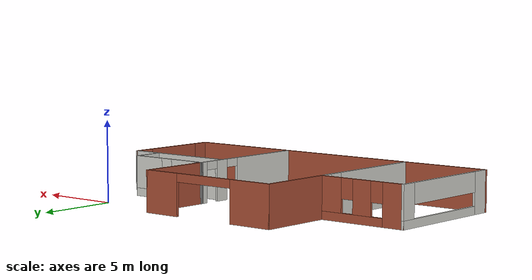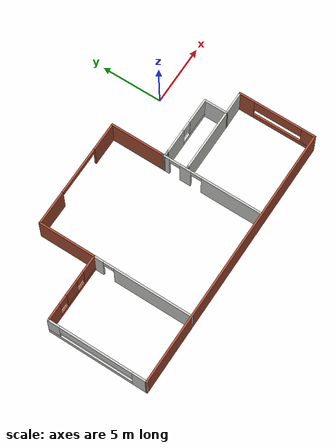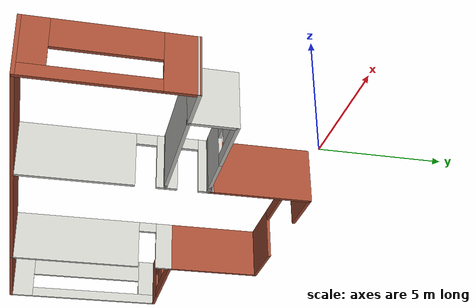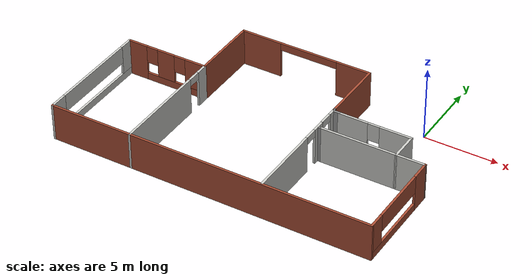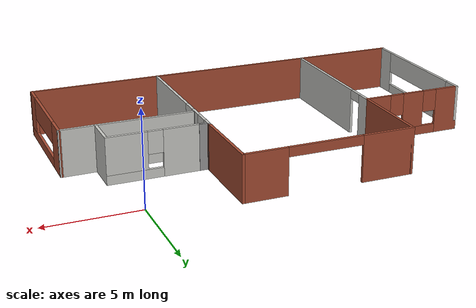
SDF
<?xml version='1.0'?>
<sdf version='1.6'>
  <model name='Building'>
    <pose frame=''>-8.2346 -5.24 0 0 -0 0</pose>
    <link name='Wall_11'>
      <pose frame=''>6.62948 1.82989 0 0 -0 0</pose>
      <visual name='Wall_11_Visual_0'>
        <pose frame=''>-1.4822 0 1.25 0 -0 0</pose>
        <geometry>
          <box>
            <size>2.0356 0.15 2.5</size>
          </box>
        </geometry>
        <material>
          <script>
            <uri>file://media/materials/scripts/gazebo.material</uri>
            <name>Gazebo/CeilingTiled</name>
          </script>
          <ambient>0.435294 0.796078 0.67451 1</ambient>
        </material>
        <meta>
          <layer>0</layer>
        </meta>
      </visual>
      <collision name='Wall_11_Collision_0'>
        <geometry>
          <box>
            <size>2.0356 0.15 2.5</size>
          </box>
        </geometry>
        <pose frame=''>-1.4822 0 1.25 0 -0 0</pose>
      </collision>
      <visual name='Wall_11_Visual_1'>
        <pose frame=''>1.0178 0 0.25 0 -0 0</pose>
        <geometry>
          <box>
            <size>2.9644 0.15 0.5</size>
          </box>
        </geometry>
        <material>
          <script>
            <uri>file://media/materials/scripts/gazebo.material</uri>
            <name>Gazebo/CeilingTiled</name>
          </script>
          <ambient>0.435294 0.796078 0.67451 1</ambient>
        </material>
        <meta>
          <layer>0</layer>
        </meta>
      </visual>
      <collision name='Wall_11_Collision_1'>
        <geometry>
          <box>
            <size>2.9644 0.15 0.5</size>
          </box>
        </geometry>
        <pose frame=''>1.0178 0 0.25 0 -0 0</pose>
      </collision>
      <visual name='Wall_11_Visual_2'>
        <pose frame=''>1.4178 0 1.5 0 -0 0</pose>
        <geometry>
          <box>
            <size>2.1644 0.15 2</size>
          </box>
        </geometry>
        <material>
          <script>
            <uri>file://media/materials/scripts/gazebo.material</uri>
            <name>Gazebo/CeilingTiled</name>
          </script>
          <ambient>0.435294 0.796078 0.67451 1</ambient>
        </material>
        <meta>
          <layer>0</layer>
        </meta>
      </visual>
      <collision name='Wall_11_Collision_2'>
        <geometry>
          <box>
            <size>2.1644 0.15 2</size>
          </box>
        </geometry>
        <pose frame=''>1.4178 0 1.5 0 -0 0</pose>
      </collision>
      <visual name='Wall_11_Visual_3'>
        <pose frame=''>-0.064396 0 1.9 0 -0 0</pose>
        <geometry>
          <box>
            <size>0.8 0.15 1.2</size>
          </box>
        </geometry>
        <material>
          <script>
            <uri>file://media/materials/scripts/gazebo.material</uri>
            <name>Gazebo/CeilingTiled</name>
          </script>
          <ambient>0.435294 0.796078 0.67451 1</ambient>
        </material>
        <meta>
          <layer>0</layer>
        </meta>
      </visual>
      <collision name='Wall_11_Collision_3'>
        <geometry>
          <box>
            <size>0.8 0.15 1.2</size>
          </box>
        </geometry>
        <pose frame=''>-0.064396 0 1.9 0 -0 0</pose>
      </collision>
    </link>
    <link name='Wall_12'>
      <collision name='Wall_12_Collision'>
        <geometry>
          <box>
            <size>2 0.15 2.5</size>
          </box>
        </geometry>
        <pose frame=''>0 0 1.25 0 -0 0</pose>
      </collision>
      <visual name='Wall_12_Visual'>
        <pose frame=''>0 0 1.25 0 -0 0</pose>
        <geometry>
          <box>
            <size>2 0.15 2.5</size>
          </box>
        </geometry>
        <material>
          <script>
            <uri>file://media/materials/scripts/gazebo.material</uri>
            <name>Gazebo/CeilingTiled</name>
          </script>
          <ambient>0.435294 0.796078 0.67451 1</ambient>
        </material>
        <meta>
          <layer>0</layer>
        </meta>
      </visual>
      <pose frame=''>9.05449 0.904887 0 0 0 -1.5708</pose>
    </link>
    <link name='Wall_13'>
      <collision name='Wall_13_Collision'>
        <geometry>
          <box>
            <size>2.02022 0.15 2.5</size>
          </box>
        </geometry>
        <pose frame=''>0 0 1.25 0 -0 0</pose>
      </collision>
      <visual name='Wall_13_Visual'>
        <pose frame=''>0 0 1.25 0 -0 0</pose>
        <geometry>
          <box>
            <size>2.02022 0.15 2.5</size>
          </box>
        </geometry>
        <material>
          <script>
            <uri>file://media/materials/scripts/gazebo.material</uri>
            <name>Gazebo/CeilingTiled</name>
          </script>
          <ambient>1 1 1 1</ambient>
        </material>
        <meta>
          <layer>0</layer>
        </meta>
      </visual>
      <pose frame=''>9.98954 -0.010056 0 0 -0 0.010755</pose>
    </link>
    <link name='Wall_14'>
      <pose frame=''>10.9246 -3.175 0 0 0 -1.5708</pose>
      <visual name='Wall_14_Visual_0'>
        <pose frame=''>-2.57463 0 1.25 0 -0 0</pose>
        <geometry>
          <box>
            <size>1.35073 0.15 2.5</size>
          </box>
        </geometry>
        <material>
          <script>
            <uri>file://media/materials/scripts/gazebo.material</uri>
            <name>Gazebo/Bricks</name>
          </script>
          <ambient>1 1 1 1</ambient>
        </material>
        <meta>
          <layer>0</layer>
        </meta>
      </visual>
      <collision name='Wall_14_Collision_0'>
        <geometry>
          <box>
            <size>1.35073 0.15 2.5</size>
          </box>
        </geometry>
        <pose frame=''>-2.57463 0 1.25 0 -0 0</pose>
      </collision>
      <visual name='Wall_14_Visual_1'>
        <pose frame=''>0.675366 0 0.25 0 -0 0</pose>
        <geometry>
          <box>
            <size>5.14927 0.15 0.5</size>
          </box>
        </geometry>
        <material>
          <script>
            <uri>file://media/materials/scripts/gazebo.material</uri>
            <name>Gazebo/Bricks</name>
          </script>
          <ambient>1 1 1 1</ambient>
        </material>
        <meta>
          <layer>0</layer>
        </meta>
      </visual>
      <collision name='Wall_14_Collision_1'>
        <geometry>
          <box>
            <size>5.14927 0.15 0.5</size>
          </box>
        </geometry>
        <pose frame=''>0.675366 0 0.25 0 -0 0</pose>
      </collision>
      <visual name='Wall_14_Visual_2'>
        <pose frame=''>2.67537 0 1.5 0 -0 0</pose>
        <geometry>
          <box>
            <size>1.14927 0.15 2</size>
          </box>
        </geometry>
        <material>
          <script>
            <uri>file://media/materials/scripts/gazebo.material</uri>
            <name>Gazebo/Bricks</name>
          </script>
          <ambient>1 1 1 1</ambient>
        </material>
        <meta>
          <layer>0</layer>
        </meta>
      </visual>
      <collision name='Wall_14_Collision_2'>
        <geometry>
          <box>
            <size>1.14927 0.15 2</size>
          </box>
        </geometry>
        <pose frame=''>2.67537 0 1.5 0 -0 0</pose>
      </collision>
      <visual name='Wall_14_Visual_3'>
        <pose frame=''>0.100732 0 1.9 0 -0 0</pose>
        <geometry>
          <box>
            <size>4 0.15 1.2</size>
          </box>
        </geometry>
        <material>
          <script>
            <uri>file://media/materials/scripts/gazebo.material</uri>
            <name>Gazebo/Bricks</name>
          </script>
          <ambient>1 1 1 1</ambient>
        </material>
        <meta>
          <layer>0</layer>
        </meta>
      </visual>
      <collision name='Wall_14_Collision_3'>
        <geometry>
          <box>
            <size>4 0.15 1.2</size>
          </box>
        </geometry>
        <pose frame=''>0.100732 0 1.9 0 -0 0</pose>
      </collision>
    </link>
    <link name='Wall_15'>
      <collision name='Wall_15_Collision'>
        <geometry>
          <box>
            <size>22 0.15 2.5</size>
          </box>
        </geometry>
        <pose frame=''>0 0 1.25 0 -0 0</pose>
      </collision>
      <visual name='Wall_15_Visual'>
        <pose frame=''>0 0 1.25 0 -0 0</pose>
        <geometry>
          <box>
            <size>22 0.15 2.5</size>
          </box>
        </geometry>
        <material>
          <script>
            <uri>file://media/materials/scripts/gazebo.material</uri>
            <name>Gazebo/Bricks</name>
          </script>
          <ambient>1 1 1 1</ambient>
        </material>
        <meta>
          <layer>0</layer>
        </meta>
      </visual>
      <pose frame=''>-0.000401 -6.35 0 0 -0 3.14159</pose>
    </link>
    <link name='Wall_16'>
      <pose frame=''>-10.9254 -2.3 0 0 -0 1.5708</pose>
      <visual name='Wall_16_Visual_0'>
        <pose frame=''>-3.50481 0 1.25 0 -0 0</pose>
        <geometry>
          <box>
            <size>1.24037 0.15 2.5</size>
          </box>
        </geometry>
        <material>
          <script>
            <uri>file://media/materials/scripts/gazebo.material</uri>
            <name>Gazebo/CeilingTiled</name>
          </script>
          <ambient>0.435294 0.796078 0.67451 1</ambient>
        </material>
        <meta>
          <layer>0</layer>
        </meta>
      </visual>
      <collision name='Wall_16_Collision_0'>
        <geometry>
          <box>
            <size>1.24037 0.15 2.5</size>
          </box>
        </geometry>
        <pose frame=''>-3.50481 0 1.25 0 -0 0</pose>
      </collision>
      <visual name='Wall_16_Visual_1'>
        <pose frame=''>0.620185 0 0.25 0 -0 0</pose>
        <geometry>
          <box>
            <size>7.00963 0.15 0.5</size>
          </box>
        </geometry>
        <material>
          <script>
            <uri>file://media/materials/scripts/gazebo.material</uri>
            <name>Gazebo/CeilingTiled</name>
          </script>
          <ambient>0.435294 0.796078 0.67451 1</ambient>
        </material>
        <meta>
          <layer>0</layer>
        </meta>
      </visual>
      <collision name='Wall_16_Collision_1'>
        <geometry>
          <box>
            <size>7.00963 0.15 0.5</size>
          </box>
        </geometry>
        <pose frame=''>0.620185 0 0.25 0 -0 0</pose>
      </collision>
      <visual name='Wall_16_Visual_2'>
        <pose frame=''>3.62019 0 1.5 0 -0 0</pose>
        <geometry>
          <box>
            <size>1.00963 0.15 2</size>
          </box>
        </geometry>
        <material>
          <script>
            <uri>file://media/materials/scripts/gazebo.material</uri>
            <name>Gazebo/CeilingTiled</name>
          </script>
          <ambient>0.435294 0.796078 0.67451 1</ambient>
        </material>
        <meta>
          <layer>0</layer>
        </meta>
      </visual>
      <collision name='Wall_16_Collision_2'>
        <geometry>
          <box>
            <size>1.00963 0.15 2</size>
          </box>
        </geometry>
        <pose frame=''>3.62019 0 1.5 0 -0 0</pose>
      </collision>
      <visual name='Wall_16_Visual_3'>
        <pose frame=''>0.11537 0 1.9 0 -0 0</pose>
        <geometry>
          <box>
            <size>6 0.15 1.2</size>
          </box>
        </geometry>
        <material>
          <script>
            <uri>file://media/materials/scripts/gazebo.material</uri>
            <name>Gazebo/CeilingTiled</name>
          </script>
          <ambient>0.435294 0.796078 0.67451 1</ambient>
        </material>
        <meta>
          <layer>0</layer>
        </meta>
      </visual>
      <collision name='Wall_16_Collision_3'>
        <geometry>
          <box>
            <size>6 0.15 1.2</size>
          </box>
        </geometry>
        <pose frame=''>0.11537 0 1.9 0 -0 0</pose>
      </collision>
    </link>
    <link name='Wall_17'>
      <pose frame=''>-8.1254 1.75 0 0 -0 0</pose>
      <visual name='Wall_17_Visual_0'>
        <pose frame=''>-2.16717 0 1.25 0 -0 0</pose>
        <geometry>
          <box>
            <size>1.41566 0.15 2.5</size>
          </box>
        </geometry>
        <material>
          <script>
            <uri>file://media/materials/scripts/gazebo.material</uri>
            <name>Gazebo/Bricks</name>
          </script>
          <ambient>1 1 1 1</ambient>
        </material>
        <meta>
          <layer>0</layer>
        </meta>
      </visual>
      <collision name='Wall_17_Collision_0'>
        <geometry>
          <box>
            <size>1.41566 0.15 2.5</size>
          </box>
        </geometry>
        <pose frame=''>-2.16717 0 1.25 0 -0 0</pose>
      </collision>
      <visual name='Wall_17_Visual_1'>
        <pose frame=''>0.707832 0 0.25 0 -0 0</pose>
        <geometry>
          <box>
            <size>4.33434 0.15 0.5</size>
          </box>
        </geometry>
        <material>
          <script>
            <uri>file://media/materials/scripts/gazebo.material</uri>
            <name>Gazebo/Bricks</name>
          </script>
          <ambient>1 1 1 1</ambient>
        </material>
        <meta>
          <layer>0</layer>
        </meta>
      </visual>
      <collision name='Wall_17_Collision_1'>
        <geometry>
          <box>
            <size>4.33434 0.15 0.5</size>
          </box>
        </geometry>
        <pose frame=''>0.707832 0 0.25 0 -0 0</pose>
      </collision>
      <visual name='Wall_17_Visual_2'>
        <pose frame=''>-0.039392 0 1.5 0 -0 0</pose>
        <geometry>
          <box>
            <size>1.23989 0.15 2</size>
          </box>
        </geometry>
        <material>
          <script>
            <uri>file://media/materials/scripts/gazebo.material</uri>
            <name>Gazebo/Bricks</name>
          </script>
          <ambient>1 1 1 1</ambient>
        </material>
        <meta>
          <layer>0</layer>
        </meta>
      </visual>
      <collision name='Wall_17_Collision_2'>
        <geometry>
          <box>
            <size>1.23989 0.15 2</size>
          </box>
        </geometry>
        <pose frame=''>-0.039392 0 1.5 0 -0 0</pose>
      </collision>
      <visual name='Wall_17_Visual_3'>
        <pose frame=''>2.12778 0 1.5 0 -0 0</pose>
        <geometry>
          <box>
            <size>1.49445 0.15 2</size>
          </box>
        </geometry>
        <material>
          <script>
            <uri>file://media/materials/scripts/gazebo.material</uri>
            <name>Gazebo/Bricks</name>
          </script>
          <ambient>1 1 1 1</ambient>
        </material>
        <meta>
          <layer>0</layer>
        </meta>
      </visual>
      <collision name='Wall_17_Collision_3'>
        <geometry>
          <box>
            <size>1.49445 0.15 2</size>
          </box>
        </geometry>
        <pose frame=''>2.12778 0 1.5 0 -0 0</pose>
      </collision>
      <visual name='Wall_17_Visual_4'>
        <pose frame=''>-1.05934 0 1.9 0 -0 0</pose>
        <geometry>
          <box>
            <size>0.8 0.15 1.2</size>
          </box>
        </geometry>
        <material>
          <script>
            <uri>file://media/materials/scripts/gazebo.material</uri>
            <name>Gazebo/Bricks</name>
          </script>
          <ambient>1 1 1 1</ambient>
        </material>
        <meta>
          <layer>0</layer>
        </meta>
      </visual>
      <collision name='Wall_17_Collision_4'>
        <geometry>
          <box>
            <size>0.8 0.15 1.2</size>
          </box>
        </geometry>
        <pose frame=''>-1.05934 0 1.9 0 -0 0</pose>
      </collision>
      <visual name='Wall_17_Visual_5'>
        <pose frame=''>0.980551 0 1.9 0 -0 0</pose>
        <geometry>
          <box>
            <size>0.8 0.15 1.2</size>
          </box>
        </geometry>
        <material>
          <script>
            <uri>file://media/materials/scripts/gazebo.material</uri>
            <name>Gazebo/Bricks</name>
          </script>
          <ambient>1 1 1 1</ambient>
        </material>
        <meta>
          <layer>0</layer>
        </meta>
      </visual>
      <collision name='Wall_17_Collision_5'>
        <geometry>
          <box>
            <size>0.8 0.15 1.2</size>
          </box>
        </geometry>
        <pose frame=''>0.980551 0 1.9 0 -0 0</pose>
      </collision>
    </link>
    <link name='Wall_18'>
      <collision name='Wall_18_Collision'>
        <geometry>
          <box>
            <size>4.75 0.15 2.5</size>
          </box>
        </geometry>
        <pose frame=''>0 0 1.25 0 -0 0</pose>
      </collision>
      <visual name='Wall_18_Visual'>
        <pose frame=''>0 0 1.25 0 -0 0</pose>
        <geometry>
          <box>
            <size>4.75 0.15 2.5</size>
          </box>
        </geometry>
        <material>
          <script>
            <uri>file://media/materials/scripts/gazebo.material</uri>
            <name>Gazebo/Bricks</name>
          </script>
          <ambient>1 1 1 1</ambient>
        </material>
        <meta>
          <layer>0</layer>
        </meta>
      </visual>
      <pose frame=''>-5.3254 4.05 0 0 -0 1.5708</pose>
    </link>
    <link name='Wall_19'>
      <pose frame=''>-0.775401 6.35 0 0 -0 0</pose>
      <visual name='Wall_19_Visual_0'>
        <pose frame=''>-3.2002 0 1.25 0 -0 0</pose>
        <geometry>
          <box>
            <size>2.8496 0.15 2.5</size>
          </box>
        </geometry>
        <material>
          <script>
            <uri>file://media/materials/scripts/gazebo.material</uri>
            <name>Gazebo/Bricks</name>
          </script>
          <ambient>1 1 1 1</ambient>
        </material>
        <meta>
          <layer>0</layer>
        </meta>
      </visual>
      <collision name='Wall_19_Collision_0'>
        <geometry>
          <box>
            <size>2.8496 0.15 2.5</size>
          </box>
        </geometry>
        <pose frame=''>-3.2002 0 1.25 0 -0 0</pose>
      </collision>
      <visual name='Wall_19_Visual_1'>
        <pose frame=''>3.4248 0 1.25 0 -0 0</pose>
        <geometry>
          <box>
            <size>2.4004 0.15 2.5</size>
          </box>
        </geometry>
        <material>
          <script>
            <uri>file://media/materials/scripts/gazebo.material</uri>
            <name>Gazebo/Bricks</name>
          </script>
          <ambient>1 1 1 1</ambient>
        </material>
        <meta>
          <layer>0</layer>
        </meta>
      </visual>
      <collision name='Wall_19_Collision_1'>
        <geometry>
          <box>
            <size>2.4004 0.15 2.5</size>
          </box>
        </geometry>
        <pose frame=''>3.4248 0 1.25 0 -0 0</pose>
      </collision>
      <visual name='Wall_19_Visual_2'>
        <pose frame=''>0.224605 0 2.25 0 -0 0</pose>
        <geometry>
          <box>
            <size>4 0.15 0.5</size>
          </box>
        </geometry>
        <material>
          <script>
            <uri>file://media/materials/scripts/gazebo.material</uri>
            <name>Gazebo/Bricks</name>
          </script>
          <ambient>1 1 1 1</ambient>
        </material>
        <meta>
          <layer>0</layer>
        </meta>
      </visual>
      <collision name='Wall_19_Collision_2'>
        <geometry>
          <box>
            <size>4 0.15 0.5</size>
          </box>
        </geometry>
        <pose frame=''>0.224605 0 2.25 0 -0 0</pose>
      </collision>
    </link>
    <link name='Wall_20'>
      <collision name='Wall_20_Collision'>
        <geometry>
          <box>
            <size>4.5 0.15 2.5</size>
          </box>
        </geometry>
        <pose frame=''>0 0 1.25 0 -0 0</pose>
      </collision>
      <visual name='Wall_20_Visual'>
        <pose frame=''>0 0 1.25 0 -0 0</pose>
        <geometry>
          <box>
            <size>4.5 0.15 2.5</size>
          </box>
        </geometry>
        <material>
          <script>
            <uri>file://media/materials/scripts/gazebo.material</uri>
            <name>Gazebo/Bricks</name>
          </script>
          <ambient>1 1 1 1</ambient>
        </material>
        <meta>
          <layer>0</layer>
        </meta>
      </visual>
      <pose frame=''>3.7746 4.175 0 0 0 -1.5708</pose>
    </link>
    <link name='Wall_23'>
      <collision name='Wall_23_Collision'>
        <geometry>
          <box>
            <size>0.323879 0.15 2.5</size>
          </box>
        </geometry>
        <pose frame=''>0 0 1.25 0 -0 0</pose>
      </collision>
      <visual name='Wall_23_Visual'>
        <pose frame=''>0 0 1.25 0 -0 0</pose>
        <geometry>
          <box>
            <size>0.323879 0.15 2.5</size>
          </box>
        </geometry>
        <material>
          <script>
            <uri>file://media/materials/scripts/gazebo.material</uri>
            <name>Gazebo/Grey</name>
          </script>
          <ambient>1 1 1 1</ambient>
        </material>
        <meta>
          <layer>0</layer>
        </meta>
      </visual>
      <pose frame=''>3.77125 1.91312 0 0 0 -1.60936</pose>
    </link>
    <link name='Wall_26'>
      <collision name='Wall_26_Collision'>
        <geometry>
          <box>
            <size>0.587206 0.15 2.5</size>
          </box>
        </geometry>
        <pose frame=''>0 0 1.25 0 -0 0</pose>
      </collision>
      <visual name='Wall_26_Visual'>
        <pose frame=''>0 0 1.25 0 -0 0</pose>
        <geometry>
          <box>
            <size>0.587206 0.15 2.5</size>
          </box>
        </geometry>
        <material>
          <script>
            <uri>file://media/materials/scripts/gazebo.material</uri>
            <name>Gazebo/Grey</name>
          </script>
          <ambient>1 1 1 1</ambient>
        </material>
        <meta>
          <layer>0</layer>
        </meta>
      </visual>
      <pose frame=''>3.98619 1.83477 0 0 0 -3.13326</pose>
    </link>
    <link name='Wall_28'>
      <pose frame=''>-5.3254 -2.3 0 0 0 -1.5708</pose>
      <visual name='Wall_28_Visual_0'>
        <pose frame=''>-3.6972 0 1.25 0 -0 0</pose>
        <geometry>
          <box>
            <size>0.855593 0.15 2.5</size>
          </box>
        </geometry>
        <material>
          <script>
            <uri>file://media/materials/scripts/gazebo.material</uri>
            <name>Gazebo/CeilingTiled</name>
          </script>
          <ambient>0.996078 0.47451 0.0196078 1</ambient>
        </material>
        <meta>
          <layer>0</layer>
        </meta>
      </visual>
      <collision name='Wall_28_Collision_0'>
        <geometry>
          <box>
            <size>0.855593 0.15 2.5</size>
          </box>
        </geometry>
        <pose frame=''>-3.6972 0 1.25 0 -0 0</pose>
      </collision>
      <visual name='Wall_28_Visual_1'>
        <pose frame=''>0.877797 0 1.25 0 -0 0</pose>
        <geometry>
          <box>
            <size>6.49441 0.15 2.5</size>
          </box>
        </geometry>
        <material>
          <script>
            <uri>file://media/materials/scripts/gazebo.material</uri>
            <name>Gazebo/CeilingTiled</name>
          </script>
          <ambient>0.996078 0.47451 0.0196078 1</ambient>
        </material>
        <meta>
          <layer>0</layer>
        </meta>
      </visual>
      <collision name='Wall_28_Collision_1'>
        <geometry>
          <box>
            <size>6.49441 0.15 2.5</size>
          </box>
        </geometry>
        <pose frame=''>0.877797 0 1.25 0 -0 0</pose>
      </collision>
      <visual name='Wall_28_Visual_2'>
        <pose frame=''>-2.81941 0 2.25 0 -0 0</pose>
        <geometry>
          <box>
            <size>0.9 0.15 0.5</size>
          </box>
        </geometry>
        <material>
          <script>
            <uri>file://media/materials/scripts/gazebo.material</uri>
            <name>Gazebo/CeilingTiled</name>
          </script>
          <ambient>0.996078 0.47451 0.0196078 1</ambient>
        </material>
        <meta>
          <layer>0</layer>
        </meta>
      </visual>
      <collision name='Wall_28_Collision_2'>
        <geometry>
          <box>
            <size>0.9 0.15 0.5</size>
          </box>
        </geometry>
        <pose frame=''>-2.81941 0 2.25 0 -0 0</pose>
      </collision>
    </link>
    <link name='Wall_30'>
      <pose frame=''>3.7679 -2.21705 0 0 0 -1.5708</pose>
      <visual name='Wall_30_Visual_0'>
        <pose frame=''>-3.8692 0 1.25 0 -0 0</pose>
        <geometry>
          <box>
            <size>0.511595 0.15 2.5</size>
          </box>
        </geometry>
        <material>
          <script>
            <uri>file://media/materials/scripts/gazebo.material</uri>
            <name>Gazebo/CeilingTiled</name>
          </script>
          <ambient>0.996078 0.47451 0.0196078 1</ambient>
        </material>
        <meta>
          <layer>0</layer>
        </meta>
      </visual>
      <collision name='Wall_30_Collision_0'>
        <geometry>
          <box>
            <size>0.511595 0.15 2.5</size>
          </box>
        </geometry>
        <pose frame=''>-3.8692 0 1.25 0 -0 0</pose>
      </collision>
      <visual name='Wall_30_Visual_1'>
        <pose frame=''>-2.26206 0 1.25 0 -0 0</pose>
        <geometry>
          <box>
            <size>0.902691 0.15 2.5</size>
          </box>
        </geometry>
        <material>
          <script>
            <uri>file://media/materials/scripts/gazebo.material</uri>
            <name>Gazebo/CeilingTiled</name>
          </script>
          <ambient>0.996078 0.47451 0.0196078 1</ambient>
        </material>
        <meta>
          <layer>0</layer>
        </meta>
      </visual>
      <collision name='Wall_30_Collision_1'>
        <geometry>
          <box>
            <size>0.902691 0.15 2.5</size>
          </box>
        </geometry>
        <pose frame=''>-2.26206 0 1.25 0 -0 0</pose>
      </collision>
      <visual name='Wall_30_Visual_2'>
        <pose frame=''>1.60714 0 1.25 0 -0 0</pose>
        <geometry>
          <box>
            <size>5.03571 0.15 2.5</size>
          </box>
        </geometry>
        <material>
          <script>
            <uri>file://media/materials/scripts/gazebo.material</uri>
            <name>Gazebo/CeilingTiled</name>
          </script>
          <ambient>0.996078 0.47451 0.0196078 1</ambient>
        </material>
        <meta>
          <layer>0</layer>
        </meta>
      </visual>
      <collision name='Wall_30_Collision_2'>
        <geometry>
          <box>
            <size>5.03571 0.15 2.5</size>
          </box>
        </geometry>
        <pose frame=''>1.60714 0 1.25 0 -0 0</pose>
      </collision>
      <visual name='Wall_30_Visual_3'>
        <pose frame=''>-3.16341 0 2.25 0 -0 0</pose>
        <geometry>
          <box>
            <size>0.9 0.15 0.5</size>
          </box>
        </geometry>
        <material>
          <script>
            <uri>file://media/materials/scripts/gazebo.material</uri>
            <name>Gazebo/CeilingTiled</name>
          </script>
          <ambient>0.996078 0.47451 0.0196078 1</ambient>
        </material>
        <meta>
          <layer>0</layer>
        </meta>
      </visual>
      <collision name='Wall_30_Collision_3'>
        <geometry>
          <box>
            <size>0.9 0.15 0.5</size>
          </box>
        </geometry>
        <pose frame=''>-3.16341 0 2.25 0 -0 0</pose>
      </collision>
      <visual name='Wall_30_Visual_4'>
        <pose frame=''>-1.36071 0 2.25 0 -0 0</pose>
        <geometry>
          <box>
            <size>0.9 0.15 0.5</size>
          </box>
        </geometry>
        <material>
          <script>
            <uri>file://media/materials/scripts/gazebo.material</uri>
            <name>Gazebo/CeilingTiled</name>
          </script>
          <ambient>0.996078 0.47451 0.0196078 1</ambient>
        </material>
        <meta>
          <layer>0</layer>
        </meta>
      </visual>
      <collision name='Wall_30_Collision_4'>
        <geometry>
          <box>
            <size>0.9 0.15 0.5</size>
          </box>
        </geometry>
        <pose frame=''>-1.36071 0 2.25 0 -0 0</pose>
      </collision>
    </link>
    <link name='Wall_34'>
      <collision name='Wall_34_Collision'>
        <geometry>
          <box>
            <size>5.25 0.15 2.5</size>
          </box>
        </geometry>
        <pose frame=''>0 0 1.25 0 -0 0</pose>
      </collision>
      <visual name='Wall_34_Visual'>
        <pose frame=''>0 0 1.25 0 -0 0</pose>
        <geometry>
          <box>
            <size>5.25 0.15 2.5</size>
          </box>
        </geometry>
        <material>
          <script>
            <uri>file://media/materials/scripts/gazebo.material</uri>
            <name>Gazebo/CeilingTiled</name>
          </script>
          <ambient>0.996078 0.47451 0.0196078 1</ambient>
        </material>
        <meta>
          <layer>0</layer>
        </meta>
      </visual>
      <pose frame=''>6.50448 -0.020113 0 0 -0 3.14159</pose>
    </link>
    <link name='Wall_35'>
      <collision name='Wall_35_Collision'>
        <geometry>
          <box>
            <size>0.25 0.15 2.5</size>
          </box>
        </geometry>
        <pose frame=''>0 0 1.25 0 -0 0</pose>
      </collision>
      <visual name='Wall_35_Visual'>
        <pose frame=''>0 0 1.25 0 -0 0</pose>
        <geometry>
          <box>
            <size>0.25 0.15 2.5</size>
          </box>
        </geometry>
        <material>
          <script>
            <uri>file://media/materials/scripts/gazebo.material</uri>
            <name>Gazebo/Grey</name>
          </script>
          <ambient>1 1 1 1</ambient>
        </material>
        <meta>
          <layer>0</layer>
        </meta>
      </visual>
      <pose frame=''>3.90449 -0.020113 0 0 -0 3.14159</pose>
    </link>
    <static>1</static>
  </model>
</sdf>
